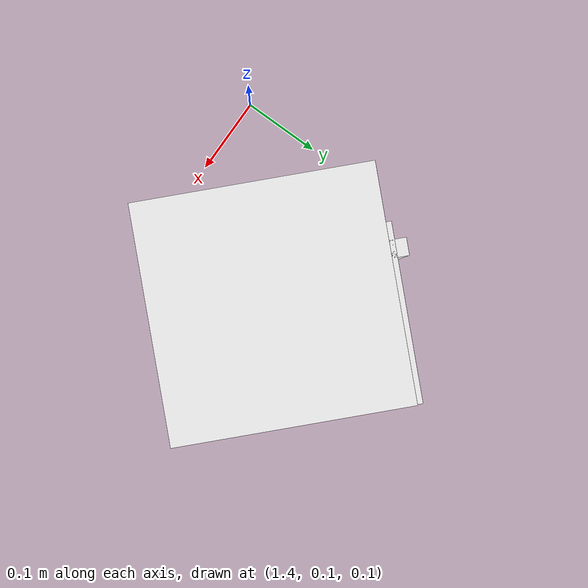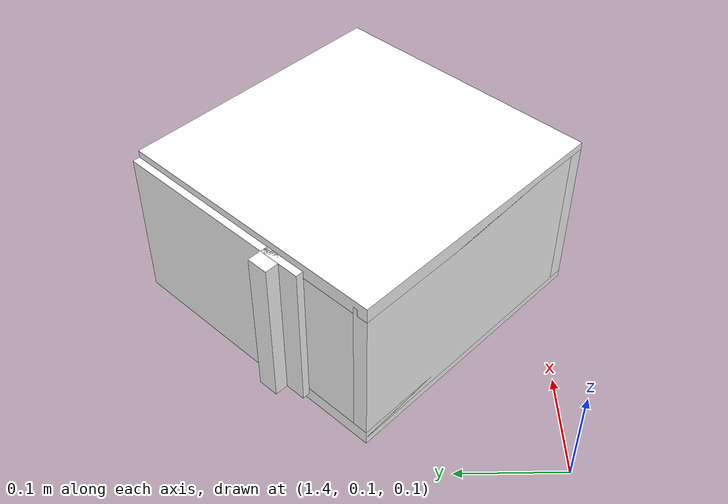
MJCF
<mujoco model="cabinet">
    <compiler angle="radian" eulerseq='zxy' />
    <option gravity = "0 0 0" />
    <option>
        <flag contact = "disable"/>
    </option>
    <statistic	extent="1.0" center="0.0 0.0 0.0"/>
    <visual>
        <map fogstart="3" fogend="5" force="0.1" znear=" 0.100000 " zfar=" 12.000000 "/>
    </visual>
    <size njmax="500" nconmax="100" />
    <actuator>
        <velocity joint="bottom_left_hinge" name="viva_revolution" kv='10'></velocity>
    </actuator>
    <asset>
        <texture builtin="flat" name="tabletex" height="32" width="32" rgb1="1 1 1" type="cube"></texture>
        <texture builtin="flat" name="objtex" height="32" width="32" rgb1="1 1 1" type="cube"></texture>
        <texture builtin="flat" name="handletex" height="32" width="32" rgb1="1 1 1" type="cube"></texture>
        <texture builtin="flat" name="wallpaper" height="32" width="32" rgb1="1 0 0" type="cube"></texture>
        <texture builtin="flat" name="kp" height="32" width="32" rgb1="1 1 1" type="cube"></texture>
        <material name="geomTable" shininess="0.03" specular="0.75" texture="tabletex"></material>
        <material name="geomObj" shininess="0.03" specular="0.75" texture="objtex"></material>
        <material name="geomHandle" shininess="0.03" specular="0.75" texture="handletex"></material>
        <material name="ax" shininess="0.03" specular="0.75" texture="wallpaper"></material>
        <material name="bg" shininess="0.03" specular="0.75" texture="wallpaper"></material>
        <material name="geomKeypad" shininess="0.03" specular="0.75" texture="kp"></material>
    </asset>
    <worldbody>
        <body name="cabinet_bottom" pos= " 1.593742 0.274794 0.146840 "  quat= " 0.378350 0.000000 0.000000 0.925663" >
            <inertial pos="0 0 0" mass="1" diaginertia="1 1 1" />
            <geom size= " 0.134521 0.133490 0.007101 "  type="box" material="geomObj" name="b"/>
            <body name="cabinet_left" pos= " 0.000000 -0.126389 0.073686 " >
                <inertial pos="0 0 0" mass="1" diaginertia="1 1 1" />
                <geom size= " 0.134521 0.007101 0.073686 "  type="box" material="geomObj" name="c" />
            </body>
            <body name="cabinet_right" pos= " 0.000000 0.126389 0.073686 " >
                <inertial pos="0 0 0" mass="1" diaginertia="1 1 1" />
                <geom size= " 0.134521 0.007101 0.073686 "  type="box" material="geomObj" name="d" />
            </body>
            <body name="cabinet_top" pos= " 0.000000 0.000000 0.147371 " >
                <inertial pos="0 0 0" mass="1" diaginertia="1 1 1" />
                <geom size= " 0.134521 0.133490 0.007101 "  type="box" material="geomObj" name="e"/>
            </body>
            <body name="cabinet_back" pos= " -0.127419 0.000000 0.073686 "  >
                <inertial pos="0 0 0" mass="1" diaginertia="1 1 1" />
                <geom size= " 0.007101 0.133490 0.073686 "  type="box" material="geomObj" name="f" />
            </body>
            <body name="cabinet_keypad" pos= " 0.007101 0.099118 0.073686 " >
                <inertial pos="0 0 0" mass="1" diaginertia="1 1 1" />
                <geom size= " 0.127419 0.033373 0.066584 "  type="box" material="geomKeypad" name="keypizzlemynizzle" />
            </body>
            <body name="cabinet_left_hinge" pos= " 0.134521 -0.133490 0.073686 " >
                <inertial pos= " 0.000000 0.100118 0.000000 "  mass="1" diaginertia="1 1 1" />
                <joint name="bottom_left_hinge" type="hinge" pos="0 0 0" axis="0 0 1" limited="true" range= "-2.3 0"  />
                <geom size= " 0.007101 0.100118 0.073686 "  pos= " 0.000000 0.100118 0.000000 "  type="box" material="geomObj" name="g"/>
                <body name="handle_link" pos= " 0.010000 0.170236 0.000000 " >
                    <inertial pos="0 0 0" mass="1" diaginertia="1 1 1" />
                    <geom size= " 0.010000 0.010000 0.073686 "  type="box" material="geomHandle" name="h"/>
                </body>
            </body>
        </body>
        <body name="external_camera_body_0" pos="0.0 0 0.00" >
            <camera euler="-1.57 1.57 0.0" fovy=" 54.280851 " name="external_camera_0" pos="0.0 0 0"></camera>
            <inertial pos= " 0.00 0.0 0.000000 " mass="1" diaginertia="1 1 1" />
            <joint name="cam_j" pos="0.0 0 0" axis = "1 0 0" type="free" />
        </body>
    </worldbody>
</mujoco>
